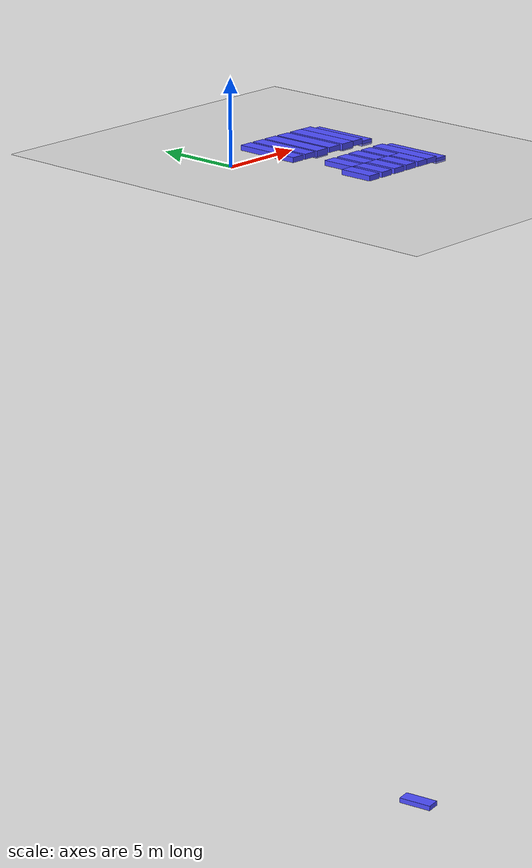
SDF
<sdf version="1.7">
 <world name="default">
  <model name="ground_plane">
   <static>1</static>
   <link name="link">
    <collision name="collision">
     <geometry><plane><normal>0 0 1</normal><size>100 100</size></plane></geometry>
     <surface><friction><ode><mu>100</mu><mu2>50</mu2></ode></friction></surface>
    </collision>
    <visual name="visual">
     <cast_shadows>0</cast_shadows>
     <geometry><plane><normal>0 0 1</normal><size>100 100</size></plane></geometry>
     <material>
      <script><uri>file://media/materials/scripts/gazebo.material</uri><name>Gazebo/Grey</name></script>
     </material>
    </visual>
   </link>
  </model>
  <model name="ban_400_80_30_clone_clone">
   <link name="link">
    <inertial>
     <mass>1</mass>
     <inertia>
      <ixx>0.166667</ixx>
      <ixy>0</ixy>
      <ixz>0</ixz>
      <iyy>0.166667</iyy>
      <iyz>0</iyz>
      <izz>0.166667</izz>
     </inertia>
    </inertial>
    <visual name="visual">
     <geometry><box><size>4 0.8 0.3</size></box></geometry>
     <material>
      <script><name>Gazebo/Grey</name><uri>file://media/materials/scripts/gazebo.material</uri></script>
      <shader type="pixel"><normal_map>__default__</normal_map></shader>
      <ambient>0.3 0.3 1 1</ambient>
      <diffuse>0.7 0.7 0.7 1</diffuse>
      <specular>0.01 0.01 0.01 1</specular>
      <emissive>0 0 0 1</emissive>
     </material>
    </visual>
    <collision name="collision">
     <geometry><box><size>4 0.8 0.3</size></box></geometry>
     <surface>
      <friction>
       <ode><mu>1</mu><mu2>1</mu2><fdir1>0 0 0</fdir1><slip1>0</slip1><slip2>0</slip2></ode>
       <torsional>
        <coefficient>1</coefficient>
        <patch_radius>0</patch_radius>
        <surface_radius>0</surface_radius>
        <use_patch_radius>1</use_patch_radius>
        <ode><slip>0</slip></ode>
       </torsional>
      </friction>
      <bounce><restitution_coefficient>0</restitution_coefficient><threshold>1e+06</threshold></bounce>
      <contact>
       <collide_without_contact>0</collide_without_contact>
       <collide_without_contact_bitmask>1</collide_without_contact_bitmask>
       <collide_bitmask>1</collide_bitmask>
       <ode>
        <soft_cfm>0</soft_cfm>
        <soft_erp>0.2</soft_erp>
        <kp>1e+13</kp>
        <kd>1</kd>
        <max_vel>0.01</max_vel>
        <min_depth>0</min_depth>
       </ode>
       <bullet>
        <split_impulse>1</split_impulse>
        <split_impulse_penetration_threshold>-0.01</split_impulse_penetration_threshold>
        <soft_cfm>0</soft_cfm>
        <soft_erp>0.2</soft_erp>
        <kp>1e+13</kp>
        <kd>1</kd>
       </bullet>
      </contact>
     </surface>
    </collision>
   </link>
   <static>1</static>
   <pose>3.39245 0.063056 0.15556 0 -0 1.55763</pose>
  </model>
  <model name="ban_400_80_30_clone_clone_clone">
   <link name="link">
    <inertial>
     <mass>1</mass>
     <inertia>
      <ixx>0.166667</ixx>
      <ixy>0</ixy>
      <ixz>0</ixz>
      <iyy>0.166667</iyy>
      <iyz>0</iyz>
      <izz>0.166667</izz>
     </inertia>
    </inertial>
    <visual name="visual">
     <geometry><box><size>4 0.8 0.3</size></box></geometry>
     <material>
      <script><name>Gazebo/Grey</name><uri>file://media/materials/scripts/gazebo.material</uri></script>
      <shader type="pixel"><normal_map>__default__</normal_map></shader>
      <ambient>0.3 0.3 1 1</ambient>
      <diffuse>0.7 0.7 0.7 1</diffuse>
      <specular>0.01 0.01 0.01 1</specular>
      <emissive>0 0 0 1</emissive>
     </material>
    </visual>
    <collision name="collision">
     <geometry><box><size>4 0.8 0.3</size></box></geometry>
     <surface>
      <friction>
       <ode><mu>1</mu><mu2>1</mu2><fdir1>0 0 0</fdir1><slip1>0</slip1><slip2>0</slip2></ode>
       <torsional>
        <coefficient>1</coefficient>
        <patch_radius>0</patch_radius>
        <surface_radius>0</surface_radius>
        <use_patch_radius>1</use_patch_radius>
        <ode><slip>0</slip></ode>
       </torsional>
      </friction>
      <bounce><restitution_coefficient>0</restitution_coefficient><threshold>1e+06</threshold></bounce>
      <contact>
       <collide_without_contact>0</collide_without_contact>
       <collide_without_contact_bitmask>1</collide_without_contact_bitmask>
       <collide_bitmask>1</collide_bitmask>
       <ode>
        <soft_cfm>0</soft_cfm>
        <soft_erp>0.2</soft_erp>
        <kp>1e+13</kp>
        <kd>1</kd>
        <max_vel>0.01</max_vel>
        <min_depth>0</min_depth>
       </ode>
       <bullet>
        <split_impulse>1</split_impulse>
        <split_impulse_penetration_threshold>-0.01</split_impulse_penetration_threshold>
        <soft_cfm>0</soft_cfm>
        <soft_erp>0.2</soft_erp>
        <kp>1e+13</kp>
        <kd>1</kd>
       </bullet>
      </contact>
     </surface>
    </collision>
   </link>
   <static>1</static>
   <pose>4.37496 0.053031 0.15556 0 -0 1.55763</pose>
  </model>
  <model name="ban_400_80_30_clone_clone_clone_clone">
   <link name="link">
    <inertial>
     <mass>1</mass>
     <inertia>
      <ixx>0.166667</ixx>
      <ixy>0</ixy>
      <ixz>0</ixz>
      <iyy>0.166667</iyy>
      <iyz>0</iyz>
      <izz>0.166667</izz>
     </inertia>
    </inertial>
    <visual name="visual">
     <geometry><box><size>4 0.884488 0.419826</size></box></geometry>
     <material>
      <script><name>Gazebo/Grey</name><uri>file://media/materials/scripts/gazebo.material</uri></script>
      <shader type="pixel"><normal_map>__default__</normal_map></shader>
      <ambient>0.3 0.3 1 1</ambient>
      <diffuse>0.7 0.7 0.7 1</diffuse>
      <specular>0.01 0.01 0.01 1</specular>
      <emissive>0 0 0 1</emissive>
     </material>
    </visual>
    <collision name="collision">
     <geometry><box><size>4 0.884488 0.419826</size></box></geometry>
     <surface>
      <friction>
       <ode><mu>1</mu><mu2>1</mu2><fdir1>0 0 0</fdir1><slip1>0</slip1><slip2>0</slip2></ode>
       <torsional>
        <coefficient>1</coefficient>
        <patch_radius>0</patch_radius>
        <surface_radius>0</surface_radius>
        <use_patch_radius>1</use_patch_radius>
        <ode><slip>0</slip></ode>
       </torsional>
      </friction>
      <bounce><restitution_coefficient>0</restitution_coefficient><threshold>1e+06</threshold></bounce>
      <contact>
       <collide_without_contact>0</collide_without_contact>
       <collide_without_contact_bitmask>1</collide_without_contact_bitmask>
       <collide_bitmask>1</collide_bitmask>
       <ode>
        <soft_cfm>0</soft_cfm>
        <soft_erp>0.2</soft_erp>
        <kp>1e+13</kp>
        <kd>1</kd>
        <max_vel>0.01</max_vel>
        <min_depth>0</min_depth>
       </ode>
       <bullet>
        <split_impulse>1</split_impulse>
        <split_impulse_penetration_threshold>-0.01</split_impulse_penetration_threshold>
        <soft_cfm>0</soft_cfm>
        <soft_erp>0.2</soft_erp>
        <kp>1e+13</kp>
        <kd>1</kd>
       </bullet>
      </contact>
     </surface>
    </collision>
   </link>
   <static>1</static>
   <pose>5.36986 0.045316 0.097515 0 -0 1.55763</pose>
  </model>
  <model name="ban_400_80_30_clone_clone_clone_clone_0">
   <link name="link">
    <inertial>
     <mass>1</mass>
     <inertia>
      <ixx>0.166667</ixx>
      <ixy>0</ixy>
      <ixz>0</ixz>
      <iyy>0.166667</iyy>
      <iyz>0</iyz>
      <izz>0.166667</izz>
     </inertia>
    </inertial>
    <visual name="visual">
     <geometry><box><size>4 0.893808 0.3</size></box></geometry>
     <material>
      <script><name>Gazebo/Grey</name><uri>file://media/materials/scripts/gazebo.material</uri></script>
      <shader type="pixel"><normal_map>__default__</normal_map></shader>
      <ambient>0.3 0.3 1 1</ambient>
      <diffuse>0.7 0.7 0.7 1</diffuse>
      <specular>0.01 0.01 0.01 1</specular>
      <emissive>0 0 0 1</emissive>
     </material>
    </visual>
    <collision name="collision">
     <geometry><box><size>4 0.893808 0.3</size></box></geometry>
     <surface>
      <friction>
       <ode><mu>1</mu><mu2>1</mu2><fdir1>0 0 0</fdir1><slip1>0</slip1><slip2>0</slip2></ode>
       <torsional>
        <coefficient>1</coefficient>
        <patch_radius>0</patch_radius>
        <surface_radius>0</surface_radius>
        <use_patch_radius>1</use_patch_radius>
        <ode><slip>0</slip></ode>
       </torsional>
      </friction>
      <bounce><restitution_coefficient>0</restitution_coefficient><threshold>1e+06</threshold></bounce>
      <contact>
       <collide_without_contact>0</collide_without_contact>
       <collide_without_contact_bitmask>1</collide_without_contact_bitmask>
       <collide_bitmask>1</collide_bitmask>
       <ode>
        <soft_cfm>0</soft_cfm>
        <soft_erp>0.2</soft_erp>
        <kp>1e+13</kp>
        <kd>1</kd>
        <max_vel>0.01</max_vel>
        <min_depth>0</min_depth>
       </ode>
       <bullet>
        <split_impulse>1</split_impulse>
        <split_impulse_penetration_threshold>-0.01</split_impulse_penetration_threshold>
        <soft_cfm>0</soft_cfm>
        <soft_erp>0.2</soft_erp>
        <kp>1e+13</kp>
        <kd>1</kd>
       </bullet>
      </contact>
     </surface>
    </collision>
   </link>
   <static>1</static>
   <pose>6.39845 0.026417 0.15556 0 -0 1.55763</pose>
  </model>
  <model name="ban_400_80_30_clone_clone_clone_clone_clone">
   <link name="link">
    <inertial>
     <mass>1</mass>
     <inertia>
      <ixx>0.166667</ixx>
      <ixy>0</ixy>
      <ixz>0</ixz>
      <iyy>0.166667</iyy>
      <iyz>0</iyz>
      <izz>0.166667</izz>
     </inertia>
    </inertial>
    <visual name="visual">
     <geometry><box><size>4 0.884489 0.419826</size></box></geometry>
     <material>
      <script><name>Gazebo/Grey</name><uri>file://media/materials/scripts/gazebo.material</uri></script>
      <shader type="pixel"><normal_map>__default__</normal_map></shader>
      <ambient>0.3 0.3 1 1</ambient>
      <diffuse>0.7 0.7 0.7 1</diffuse>
      <specular>0.01 0.01 0.01 1</specular>
      <emissive>0 0 0 1</emissive>
     </material>
    </visual>
    <collision name="collision">
     <geometry><box><size>4 0.884489 0.419826</size></box></geometry>
     <surface>
      <friction>
       <ode><mu>1</mu><mu2>1</mu2><fdir1>0 0 0</fdir1><slip1>0</slip1><slip2>0</slip2></ode>
       <torsional>
        <coefficient>1</coefficient>
        <patch_radius>0</patch_radius>
        <surface_radius>0</surface_radius>
        <use_patch_radius>1</use_patch_radius>
        <ode><slip>0</slip></ode>
       </torsional>
      </friction>
      <bounce><restitution_coefficient>0</restitution_coefficient><threshold>1e+06</threshold></bounce>
      <contact>
       <collide_without_contact>0</collide_without_contact>
       <collide_without_contact_bitmask>1</collide_without_contact_bitmask>
       <collide_bitmask>1</collide_bitmask>
       <ode>
        <soft_cfm>0</soft_cfm>
        <soft_erp>0.2</soft_erp>
        <kp>1e+13</kp>
        <kd>1</kd>
        <max_vel>0.01</max_vel>
        <min_depth>0</min_depth>
       </ode>
       <bullet>
        <split_impulse>1</split_impulse>
        <split_impulse_penetration_threshold>-0.01</split_impulse_penetration_threshold>
        <soft_cfm>0</soft_cfm>
        <soft_erp>0.2</soft_erp>
        <kp>1e+13</kp>
        <kd>1</kd>
       </bullet>
      </contact>
     </surface>
    </collision>
   </link>
   <static>1</static>
   <pose>7.49306 0.005349 0.097515 0 -0 1.55763</pose>
  </model>
  <model name="ban_400_80_30_clone_clone_0">
   <link name="link">
    <inertial>
     <mass>1</mass>
     <inertia>
      <ixx>0.166667</ixx>
      <ixy>0</ixy>
      <ixz>0</ixz>
      <iyy>0.166667</iyy>
      <iyz>0</iyz>
      <izz>0.166667</izz>
     </inertia>
    </inertial>
    <visual name="visual">
     <geometry><box><size>4 0.8 0.3</size></box></geometry>
     <material>
      <script><name>Gazebo/Grey</name><uri>file://media/materials/scripts/gazebo.material</uri></script>
      <shader type="pixel"><normal_map>__default__</normal_map></shader>
      <ambient>0.3 0.3 1 1</ambient>
      <diffuse>0.7 0.7 0.7 1</diffuse>
      <specular>0.01 0.01 0.01 1</specular>
      <emissive>0 0 0 1</emissive>
     </material>
    </visual>
    <collision name="collision">
     <geometry><box><size>4 0.8 0.3</size></box></geometry>
     <surface>
      <friction>
       <ode><mu>1</mu><mu2>1</mu2><fdir1>0 0 0</fdir1><slip1>0</slip1><slip2>0</slip2></ode>
       <torsional>
        <coefficient>1</coefficient>
        <patch_radius>0</patch_radius>
        <surface_radius>0</surface_radius>
        <use_patch_radius>1</use_patch_radius>
        <ode><slip>0</slip></ode>
       </torsional>
      </friction>
      <bounce><restitution_coefficient>0</restitution_coefficient><threshold>1e+06</threshold></bounce>
      <contact>
       <collide_without_contact>0</collide_without_contact>
       <collide_without_contact_bitmask>1</collide_without_contact_bitmask>
       <collide_bitmask>1</collide_bitmask>
       <ode>
        <soft_cfm>0</soft_cfm>
        <soft_erp>0.2</soft_erp>
        <kp>1e+13</kp>
        <kd>1</kd>
        <max_vel>0.01</max_vel>
        <min_depth>0</min_depth>
       </ode>
       <bullet>
        <split_impulse>1</split_impulse>
        <split_impulse_penetration_threshold>-0.01</split_impulse_penetration_threshold>
        <soft_cfm>0</soft_cfm>
        <soft_erp>0.2</soft_erp>
        <kp>1e+13</kp>
        <kd>1</kd>
       </bullet>
      </contact>
     </surface>
    </collision>
   </link>
   <static>1</static>
   <pose>8.33888 -0.001923 0.150704 0 -0 1.55763</pose>
  </model>
  <model name="ban_400_80_30_clone_0">
   <link name="link">
    <inertial>
     <mass>1</mass>
     <inertia>
      <ixx>0.166667</ixx>
      <ixy>0</ixy>
      <ixz>0</ixz>
      <iyy>0.166667</iyy>
      <iyz>0</iyz>
      <izz>0.166667</izz>
     </inertia>
    </inertial>
    <visual name="visual">
     <geometry><box><size>4 0.8 0.3</size></box></geometry>
     <material>
      <script><name>Gazebo/Grey</name><uri>file://media/materials/scripts/gazebo.material</uri></script>
      <shader type="pixel"><normal_map>__default__</normal_map></shader>
      <ambient>0.3 0.3 1 1</ambient>
      <diffuse>0.7 0.7 0.7 1</diffuse>
      <specular>0.01 0.01 0.01 1</specular>
      <emissive>0 0 0 1</emissive>
     </material>
    </visual>
    <collision name="collision">
     <geometry><box><size>4 0.8 0.3</size></box></geometry>
     <surface>
      <friction>
       <ode><mu>1</mu><mu2>1</mu2><fdir1>0 0 0</fdir1><slip1>0</slip1><slip2>0</slip2></ode>
       <torsional>
        <coefficient>1</coefficient>
        <patch_radius>0</patch_radius>
        <surface_radius>0</surface_radius>
        <use_patch_radius>1</use_patch_radius>
        <ode><slip>0</slip></ode>
       </torsional>
      </friction>
      <bounce><restitution_coefficient>0</restitution_coefficient><threshold>1e+06</threshold></bounce>
      <contact>
       <collide_without_contact>0</collide_without_contact>
       <collide_without_contact_bitmask>1</collide_without_contact_bitmask>
       <collide_bitmask>1</collide_bitmask>
       <ode>
        <soft_cfm>0</soft_cfm>
        <soft_erp>0.2</soft_erp>
        <kp>1e+13</kp>
        <kd>1</kd>
        <max_vel>0.01</max_vel>
        <min_depth>0</min_depth>
       </ode>
       <bullet>
        <split_impulse>1</split_impulse>
        <split_impulse_penetration_threshold>-0.01</split_impulse_penetration_threshold>
        <soft_cfm>0</soft_cfm>
        <soft_erp>0.2</soft_erp>
        <kp>1e+13</kp>
        <kd>1</kd>
       </bullet>
      </contact>
     </surface>
    </collision>
   </link>
   <static>1</static>
   <pose>9.1293 -0.014354 0 0 -0 1.55763</pose>
  </model>
  <model name="ban_200_80_30_clone">
   <link name="link">
    <inertial>
     <mass>1</mass>
     <inertia>
      <ixx>0.166667</ixx>
      <ixy>0</ixy>
      <ixz>0</ixz>
      <iyy>0.166667</iyy>
      <iyz>0</iyz>
      <izz>0.166667</izz>
     </inertia>
    </inertial>
    <visual name="visual">
     <geometry><box><size>2 0.8 0.3</size></box></geometry>
     <material>
      <script><name>Gazebo/Grey</name><uri>file://media/materials/scripts/gazebo.material</uri></script>
      <shader type="pixel"><normal_map>__default__</normal_map></shader>
      <ambient>0.3 0.3 1 1</ambient>
      <diffuse>0.7 0.7 0.7 1</diffuse>
      <specular>0.01 0.01 0.01 1</specular>
      <emissive>0 0 0 1</emissive>
     </material>
    </visual>
    <collision name="collision">
     <geometry><box><size>2 0.8 0.3</size></box></geometry>
     <surface>
      <friction>
       <ode><mu>1</mu><mu2>1</mu2><fdir1>0 0 0</fdir1><slip1>0</slip1><slip2>0</slip2></ode>
       <torsional>
        <coefficient>1</coefficient>
        <patch_radius>0</patch_radius>
        <surface_radius>0</surface_radius>
        <use_patch_radius>1</use_patch_radius>
        <ode><slip>0</slip></ode>
       </torsional>
      </friction>
      <bounce><restitution_coefficient>0</restitution_coefficient><threshold>1e+06</threshold></bounce>
      <contact>
       <collide_without_contact>0</collide_without_contact>
       <collide_without_contact_bitmask>1</collide_without_contact_bitmask>
       <collide_bitmask>1</collide_bitmask>
       <ode>
        <soft_cfm>0</soft_cfm>
        <soft_erp>0.2</soft_erp>
        <kp>1e+13</kp>
        <kd>1</kd>
        <max_vel>0.01</max_vel>
        <min_depth>0</min_depth>
       </ode>
       <bullet>
        <split_impulse>1</split_impulse>
        <split_impulse_penetration_threshold>-0.01</split_impulse_penetration_threshold>
        <soft_cfm>0</soft_cfm>
        <soft_erp>0.2</soft_erp>
        <kp>1e+13</kp>
        <kd>1</kd>
       </bullet>
      </contact>
     </surface>
    </collision>
   </link>
   <static>1</static>
   <pose>3.37749 -6.50817 0.12138 0 0 -1.57453</pose>
  </model>
  <model name="ban_200_80_30_clone_0">
   <link name="link">
    <inertial>
     <mass>1</mass>
     <inertia>
      <ixx>0.166667</ixx>
      <ixy>0</ixy>
      <ixz>0</ixz>
      <iyy>0.166667</iyy>
      <iyz>0</iyz>
      <izz>0.166667</izz>
     </inertia>
    </inertial>
    <visual name="visual">
     <geometry><box><size>2 0.8 0.3</size></box></geometry>
     <material>
      <script><name>Gazebo/Grey</name><uri>file://media/materials/scripts/gazebo.material</uri></script>
      <shader type="pixel"><normal_map>__default__</normal_map></shader>
      <ambient>0.3 0.3 1 1</ambient>
      <diffuse>0.7 0.7 0.7 1</diffuse>
      <specular>0.01 0.01 0.01 1</specular>
      <emissive>0 0 0 1</emissive>
     </material>
    </visual>
    <collision name="collision">
     <geometry><box><size>2 0.8 0.3</size></box></geometry>
     <surface>
      <friction>
       <ode><mu>1</mu><mu2>1</mu2><fdir1>0 0 0</fdir1><slip1>0</slip1><slip2>0</slip2></ode>
       <torsional>
        <coefficient>1</coefficient>
        <patch_radius>0</patch_radius>
        <surface_radius>0</surface_radius>
        <use_patch_radius>1</use_patch_radius>
        <ode><slip>0</slip></ode>
       </torsional>
      </friction>
      <bounce><restitution_coefficient>0</restitution_coefficient><threshold>1e+06</threshold></bounce>
      <contact>
       <collide_without_contact>0</collide_without_contact>
       <collide_without_contact_bitmask>1</collide_without_contact_bitmask>
       <collide_bitmask>1</collide_bitmask>
       <ode>
        <soft_cfm>0</soft_cfm>
        <soft_erp>0.2</soft_erp>
        <kp>1e+13</kp>
        <kd>1</kd>
        <max_vel>0.01</max_vel>
        <min_depth>0</min_depth>
       </ode>
       <bullet>
        <split_impulse>1</split_impulse>
        <split_impulse_penetration_threshold>-0.01</split_impulse_penetration_threshold>
        <soft_cfm>0</soft_cfm>
        <soft_erp>0.2</soft_erp>
        <kp>1e+13</kp>
        <kd>1</kd>
       </bullet>
      </contact>
     </surface>
    </collision>
   </link>
   <static>1</static>
   <pose>4.1987 -4.53193 0.12138 0 0 -1.57453</pose>
  </model>
  <model name="ban_200_80_30_clone_1">
   <link name="link">
    <inertial>
     <mass>1</mass>
     <inertia>
      <ixx>0.166667</ixx>
      <ixy>0</ixy>
      <ixz>0</ixz>
      <iyy>0.166667</iyy>
      <iyz>0</iyz>
      <izz>0.166667</izz>
     </inertia>
    </inertial>
    <visual name="visual">
     <geometry><box><size>2 0.8 0.3</size></box></geometry>
     <material>
      <script><name>Gazebo/Grey</name><uri>file://media/materials/scripts/gazebo.material</uri></script>
      <shader type="pixel"><normal_map>__default__</normal_map></shader>
      <ambient>0.3 0.3 1 1</ambient>
      <diffuse>0.7 0.7 0.7 1</diffuse>
      <specular>0.01 0.01 0.01 1</specular>
      <emissive>0 0 0 1</emissive>
     </material>
    </visual>
    <collision name="collision">
     <geometry><box><size>2 0.8 0.3</size></box></geometry>
     <surface>
      <friction>
       <ode><mu>1</mu><mu2>1</mu2><fdir1>0 0 0</fdir1><slip1>0</slip1><slip2>0</slip2></ode>
       <torsional>
        <coefficient>1</coefficient>
        <patch_radius>0</patch_radius>
        <surface_radius>0</surface_radius>
        <use_patch_radius>1</use_patch_radius>
        <ode><slip>0</slip></ode>
       </torsional>
      </friction>
      <bounce><restitution_coefficient>0</restitution_coefficient><threshold>1e+06</threshold></bounce>
      <contact>
       <collide_without_contact>0</collide_without_contact>
       <collide_without_contact_bitmask>1</collide_without_contact_bitmask>
       <collide_bitmask>1</collide_bitmask>
       <ode>
        <soft_cfm>0</soft_cfm>
        <soft_erp>0.2</soft_erp>
        <kp>1e+13</kp>
        <kd>1</kd>
        <max_vel>0.01</max_vel>
        <min_depth>0</min_depth>
       </ode>
       <bullet>
        <split_impulse>1</split_impulse>
        <split_impulse_penetration_threshold>-0.01</split_impulse_penetration_threshold>
        <soft_cfm>0</soft_cfm>
        <soft_erp>0.2</soft_erp>
        <kp>1e+13</kp>
        <kd>1</kd>
       </bullet>
      </contact>
     </surface>
    </collision>
   </link>
   <static>1</static>
   <pose>4.40676 -6.517 0.12138 0 0 -1.57453</pose>
  </model>
  <model name="ban_200_80_30_clone_2">
   <link name="link">
    <inertial>
     <mass>1</mass>
     <inertia>
      <ixx>0.166667</ixx>
      <ixy>0</ixy>
      <ixz>0</ixz>
      <iyy>0.166667</iyy>
      <iyz>0</iyz>
      <izz>0.166667</izz>
     </inertia>
    </inertial>
    <visual name="visual">
     <geometry><box><size>2 0.8 0.3</size></box></geometry>
     <material>
      <script><name>Gazebo/Grey</name><uri>file://media/materials/scripts/gazebo.material</uri></script>
      <shader type="pixel"><normal_map>__default__</normal_map></shader>
      <ambient>0.3 0.3 1 1</ambient>
      <diffuse>0.7 0.7 0.7 1</diffuse>
      <specular>0.01 0.01 0.01 1</specular>
      <emissive>0 0 0 1</emissive>
     </material>
    </visual>
    <collision name="collision">
     <geometry><box><size>2 0.8 0.3</size></box></geometry>
     <surface>
      <friction>
       <ode><mu>1</mu><mu2>1</mu2><fdir1>0 0 0</fdir1><slip1>0</slip1><slip2>0</slip2></ode>
       <torsional>
        <coefficient>1</coefficient>
        <patch_radius>0</patch_radius>
        <surface_radius>0</surface_radius>
        <use_patch_radius>1</use_patch_radius>
        <ode><slip>0</slip></ode>
       </torsional>
      </friction>
      <bounce><restitution_coefficient>0</restitution_coefficient><threshold>1e+06</threshold></bounce>
      <contact>
       <collide_without_contact>0</collide_without_contact>
       <collide_without_contact_bitmask>1</collide_without_contact_bitmask>
       <collide_bitmask>1</collide_bitmask>
       <ode>
        <soft_cfm>0</soft_cfm>
        <soft_erp>0.2</soft_erp>
        <kp>1e+13</kp>
        <kd>1</kd>
        <max_vel>0.01</max_vel>
        <min_depth>0</min_depth>
       </ode>
       <bullet>
        <split_impulse>1</split_impulse>
        <split_impulse_penetration_threshold>-0.01</split_impulse_penetration_threshold>
        <soft_cfm>0</soft_cfm>
        <soft_erp>0.2</soft_erp>
        <kp>1e+13</kp>
        <kd>1</kd>
       </bullet>
      </contact>
     </surface>
    </collision>
   </link>
   <static>1</static>
   <pose>5.21905 -4.53145 0.12138 0 0 -1.57453</pose>
  </model>
  <model name="ban_200_80_30_clone_3">
   <link name="link">
    <inertial>
     <mass>1</mass>
     <inertia>
      <ixx>0.166667</ixx>
      <ixy>0</ixy>
      <ixz>0</ixz>
      <iyy>0.166667</iyy>
      <iyz>0</iyz>
      <izz>0.166667</izz>
     </inertia>
    </inertial>
    <visual name="visual">
     <geometry><box><size>2 0.8 0.3</size></box></geometry>
     <material>
      <script><name>Gazebo/Grey</name><uri>file://media/materials/scripts/gazebo.material</uri></script>
      <shader type="pixel"><normal_map>__default__</normal_map></shader>
      <ambient>0.3 0.3 1 1</ambient>
      <diffuse>0.7 0.7 0.7 1</diffuse>
      <specular>0.01 0.01 0.01 1</specular>
      <emissive>0 0 0 1</emissive>
     </material>
    </visual>
    <collision name="collision">
     <geometry><box><size>2 0.8 0.3</size></box></geometry>
     <surface>
      <friction>
       <ode><mu>1</mu><mu2>1</mu2><fdir1>0 0 0</fdir1><slip1>0</slip1><slip2>0</slip2></ode>
       <torsional>
        <coefficient>1</coefficient>
        <patch_radius>0</patch_radius>
        <surface_radius>0</surface_radius>
        <use_patch_radius>1</use_patch_radius>
        <ode><slip>0</slip></ode>
       </torsional>
      </friction>
      <bounce><restitution_coefficient>0</restitution_coefficient><threshold>1e+06</threshold></bounce>
      <contact>
       <collide_without_contact>0</collide_without_contact>
       <collide_without_contact_bitmask>1</collide_without_contact_bitmask>
       <collide_bitmask>1</collide_bitmask>
       <ode>
        <soft_cfm>0</soft_cfm>
        <soft_erp>0.2</soft_erp>
        <kp>1e+13</kp>
        <kd>1</kd>
        <max_vel>0.01</max_vel>
        <min_depth>0</min_depth>
       </ode>
       <bullet>
        <split_impulse>1</split_impulse>
        <split_impulse_penetration_threshold>-0.01</split_impulse_penetration_threshold>
        <soft_cfm>0</soft_cfm>
        <soft_erp>0.2</soft_erp>
        <kp>1e+13</kp>
        <kd>1</kd>
       </bullet>
      </contact>
     </surface>
    </collision>
   </link>
   <static>1</static>
   <pose>5.43779 -6.51513 0.12138 0 0 -1.57453</pose>
  </model>
  <model name="ban_200_80_30_clone_4">
   <link name="link">
    <inertial>
     <mass>1</mass>
     <inertia>
      <ixx>0.166667</ixx>
      <ixy>0</ixy>
      <ixz>0</ixz>
      <iyy>0.166667</iyy>
      <iyz>0</iyz>
      <izz>0.166667</izz>
     </inertia>
    </inertial>
    <visual name="visual">
     <geometry><box><size>2 0.8 0.3</size></box></geometry>
     <material>
      <script><name>Gazebo/Grey</name><uri>file://media/materials/scripts/gazebo.material</uri></script>
      <shader type="pixel"><normal_map>__default__</normal_map></shader>
      <ambient>0.3 0.3 1 1</ambient>
      <diffuse>0.7 0.7 0.7 1</diffuse>
      <specular>0.01 0.01 0.01 1</specular>
      <emissive>0 0 0 1</emissive>
     </material>
    </visual>
    <collision name="collision">
     <geometry><box><size>2 0.8 0.3</size></box></geometry>
     <surface>
      <friction>
       <ode><mu>1</mu><mu2>1</mu2><fdir1>0 0 0</fdir1><slip1>0</slip1><slip2>0</slip2></ode>
       <torsional>
        <coefficient>1</coefficient>
        <patch_radius>0</patch_radius>
        <surface_radius>0</surface_radius>
        <use_patch_radius>1</use_patch_radius>
        <ode><slip>0</slip></ode>
       </torsional>
      </friction>
      <bounce><restitution_coefficient>0</restitution_coefficient><threshold>1e+06</threshold></bounce>
      <contact>
       <collide_without_contact>0</collide_without_contact>
       <collide_without_contact_bitmask>1</collide_without_contact_bitmask>
       <collide_bitmask>1</collide_bitmask>
       <ode>
        <soft_cfm>0</soft_cfm>
        <soft_erp>0.2</soft_erp>
        <kp>1e+13</kp>
        <kd>1</kd>
        <max_vel>0.01</max_vel>
        <min_depth>0</min_depth>
       </ode>
       <bullet>
        <split_impulse>1</split_impulse>
        <split_impulse_penetration_threshold>-0.01</split_impulse_penetration_threshold>
        <soft_cfm>0</soft_cfm>
        <soft_erp>0.2</soft_erp>
        <kp>1e+13</kp>
        <kd>1</kd>
       </bullet>
      </contact>
     </surface>
    </collision>
   </link>
   <static>1</static>
   <pose>6.23074 -4.5101 0.12138 0 0 -1.57453</pose>
  </model>
  <model name="ban_200_80_30_clone_5">
   <link name="link">
    <inertial>
     <mass>1</mass>
     <inertia>
      <ixx>0.166667</ixx>
      <ixy>0</ixy>
      <ixz>0</ixz>
      <iyy>0.166667</iyy>
      <iyz>0</iyz>
      <izz>0.166667</izz>
     </inertia>
    </inertial>
    <visual name="visual">
     <geometry><box><size>2 0.8 0.3</size></box></geometry>
     <material>
      <script><name>Gazebo/Grey</name><uri>file://media/materials/scripts/gazebo.material</uri></script>
      <shader type="pixel"><normal_map>__default__</normal_map></shader>
      <ambient>0.3 0.3 1 1</ambient>
      <diffuse>0.7 0.7 0.7 1</diffuse>
      <specular>0.01 0.01 0.01 1</specular>
      <emissive>0 0 0 1</emissive>
     </material>
    </visual>
    <collision name="collision">
     <geometry><box><size>2 0.8 0.3</size></box></geometry>
     <surface>
      <friction>
       <ode><mu>1</mu><mu2>1</mu2><fdir1>0 0 0</fdir1><slip1>0</slip1><slip2>0</slip2></ode>
       <torsional>
        <coefficient>1</coefficient>
        <patch_radius>0</patch_radius>
        <surface_radius>0</surface_radius>
        <use_patch_radius>1</use_patch_radius>
        <ode><slip>0</slip></ode>
       </torsional>
      </friction>
      <bounce><restitution_coefficient>0</restitution_coefficient><threshold>1e+06</threshold></bounce>
      <contact>
       <collide_without_contact>0</collide_without_contact>
       <collide_without_contact_bitmask>1</collide_without_contact_bitmask>
       <collide_bitmask>1</collide_bitmask>
       <ode>
        <soft_cfm>0</soft_cfm>
        <soft_erp>0.2</soft_erp>
        <kp>1e+13</kp>
        <kd>1</kd>
        <max_vel>0.01</max_vel>
        <min_depth>0</min_depth>
       </ode>
       <bullet>
        <split_impulse>1</split_impulse>
        <split_impulse_penetration_threshold>-0.01</split_impulse_penetration_threshold>
        <soft_cfm>0</soft_cfm>
        <soft_erp>0.2</soft_erp>
        <kp>1e+13</kp>
        <kd>1</kd>
       </bullet>
      </contact>
     </surface>
    </collision>
   </link>
   <static>1</static>
   <pose>6.43473 -6.50923 0.12138 0 0 -1.57453</pose>
  </model>
  <model name="ban_200_80_30_clone_6">
   <link name="link">
    <inertial>
     <mass>1</mass>
     <inertia>
      <ixx>0.166667</ixx>
      <ixy>0</ixy>
      <ixz>0</ixz>
      <iyy>0.166667</iyy>
      <iyz>0</iyz>
      <izz>0.166667</izz>
     </inertia>
    </inertial>
    <visual name="visual">
     <geometry><box><size>2 0.8 0.3</size></box></geometry>
     <material>
      <script><name>Gazebo/Grey</name><uri>file://media/materials/scripts/gazebo.material</uri></script>
      <shader type="pixel"><normal_map>__default__</normal_map></shader>
      <ambient>0.3 0.3 1 1</ambient>
      <diffuse>0.7 0.7 0.7 1</diffuse>
      <specular>0.01 0.01 0.01 1</specular>
      <emissive>0 0 0 1</emissive>
     </material>
    </visual>
    <collision name="collision">
     <geometry><box><size>2 0.8 0.3</size></box></geometry>
     <surface>
      <friction>
       <ode><mu>1</mu><mu2>1</mu2><fdir1>0 0 0</fdir1><slip1>0</slip1><slip2>0</slip2></ode>
       <torsional>
        <coefficient>1</coefficient>
        <patch_radius>0</patch_radius>
        <surface_radius>0</surface_radius>
        <use_patch_radius>1</use_patch_radius>
        <ode><slip>0</slip></ode>
       </torsional>
      </friction>
      <bounce><restitution_coefficient>0</restitution_coefficient><threshold>1e+06</threshold></bounce>
      <contact>
       <collide_without_contact>0</collide_without_contact>
       <collide_without_contact_bitmask>1</collide_without_contact_bitmask>
       <collide_bitmask>1</collide_bitmask>
       <ode>
        <soft_cfm>0</soft_cfm>
        <soft_erp>0.2</soft_erp>
        <kp>1e+13</kp>
        <kd>1</kd>
        <max_vel>0.01</max_vel>
        <min_depth>0</min_depth>
       </ode>
       <bullet>
        <split_impulse>1</split_impulse>
        <split_impulse_penetration_threshold>-0.01</split_impulse_penetration_threshold>
        <soft_cfm>0</soft_cfm>
        <soft_erp>0.2</soft_erp>
        <kp>1e+13</kp>
        <kd>1</kd>
       </bullet>
      </contact>
     </surface>
    </collision>
   </link>
   <static>1</static>
   <pose>7.22725 -4.53178 0.12138 0 0 -1.57453</pose>
  </model>
  <model name="ban_200_80_30_clone_7">
   <link name="link">
    <inertial>
     <mass>1</mass>
     <inertia>
      <ixx>0.166667</ixx>
      <ixy>0</ixy>
      <ixz>0</ixz>
      <iyy>0.166667</iyy>
      <iyz>0</iyz>
      <izz>0.166667</izz>
     </inertia>
    </inertial>
    <visual name="visual">
     <geometry><box><size>2 0.8 0.3</size></box></geometry>
     <material>
      <script><name>Gazebo/Grey</name><uri>file://media/materials/scripts/gazebo.material</uri></script>
      <shader type="pixel"><normal_map>__default__</normal_map></shader>
      <ambient>0.3 0.3 1 1</ambient>
      <diffuse>0.7 0.7 0.7 1</diffuse>
      <specular>0.01 0.01 0.01 1</specular>
      <emissive>0 0 0 1</emissive>
     </material>
    </visual>
    <collision name="collision">
     <geometry><box><size>2 0.8 0.3</size></box></geometry>
     <surface>
      <friction>
       <ode><mu>1</mu><mu2>1</mu2><fdir1>0 0 0</fdir1><slip1>0</slip1><slip2>0</slip2></ode>
       <torsional>
        <coefficient>1</coefficient>
        <patch_radius>0</patch_radius>
        <surface_radius>0</surface_radius>
        <use_patch_radius>1</use_patch_radius>
        <ode><slip>0</slip></ode>
       </torsional>
      </friction>
      <bounce><restitution_coefficient>0</restitution_coefficient><threshold>1e+06</threshold></bounce>
      <contact>
       <collide_without_contact>0</collide_without_contact>
       <collide_without_contact_bitmask>1</collide_without_contact_bitmask>
       <collide_bitmask>1</collide_bitmask>
       <ode>
        <soft_cfm>0</soft_cfm>
        <soft_erp>0.2</soft_erp>
        <kp>1e+13</kp>
        <kd>1</kd>
        <max_vel>0.01</max_vel>
        <min_depth>0</min_depth>
       </ode>
       <bullet>
        <split_impulse>1</split_impulse>
        <split_impulse_penetration_threshold>-0.01</split_impulse_penetration_threshold>
        <soft_cfm>0</soft_cfm>
        <soft_erp>0.2</soft_erp>
        <kp>1e+13</kp>
        <kd>1</kd>
       </bullet>
      </contact>
     </surface>
    </collision>
   </link>
   <static>1</static>
   <pose>7.42507 -6.51133 0.12138 0 0 -1.57453</pose>
  </model>
  <model name="ban_400_80_30_clone_2_clone">
   <link name="link">
    <inertial>
     <mass>1</mass>
     <inertia>
      <ixx>0.166667</ixx>
      <ixy>0</ixy>
      <ixz>0</ixz>
      <iyy>0.166667</iyy>
      <iyz>0</iyz>
      <izz>0.166667</izz>
     </inertia>
    </inertial>
    <visual name="visual">
     <geometry><box><size>4 0.8 0.3</size></box></geometry>
     <material>
      <script><name>Gazebo/Grey</name><uri>file://media/materials/scripts/gazebo.material</uri></script>
      <shader type="pixel"><normal_map>__default__</normal_map></shader>
      <ambient>0.3 0.3 1 1</ambient>
      <diffuse>0.7 0.7 0.7 1</diffuse>
      <specular>0.01 0.01 0.01 1</specular>
      <emissive>0 0 0 1</emissive>
     </material>
    </visual>
    <collision name="collision">
     <geometry><box><size>4 0.8 0.3</size></box></geometry>
     <surface>
      <friction>
       <ode><mu>1</mu><mu2>1</mu2><fdir1>0 0 0</fdir1><slip1>0</slip1><slip2>0</slip2></ode>
       <torsional>
        <coefficient>1</coefficient>
        <patch_radius>0</patch_radius>
        <surface_radius>0</surface_radius>
        <use_patch_radius>1</use_patch_radius>
        <ode><slip>0</slip></ode>
       </torsional>
      </friction>
      <bounce><restitution_coefficient>0</restitution_coefficient><threshold>1e+06</threshold></bounce>
      <contact>
       <collide_without_contact>0</collide_without_contact>
       <collide_without_contact_bitmask>1</collide_without_contact_bitmask>
       <collide_bitmask>1</collide_bitmask>
       <ode>
        <soft_cfm>0</soft_cfm>
        <soft_erp>0.2</soft_erp>
        <kp>1e+13</kp>
        <kd>1</kd>
        <max_vel>0.01</max_vel>
        <min_depth>0</min_depth>
       </ode>
       <bullet>
        <split_impulse>1</split_impulse>
        <split_impulse_penetration_threshold>-0.01</split_impulse_penetration_threshold>
        <soft_cfm>0</soft_cfm>
        <soft_erp>0.2</soft_erp>
        <kp>1e+13</kp>
        <kd>1</kd>
       </bullet>
      </contact>
     </surface>
    </collision>
   </link>
   <static>1</static>
   <pose>8.22482 -5.5299 0.12761 0 -0 1.55763</pose>
  </model>
  <model name="ban_400_80_30_clone_1_clone">
   <link name="link">
    <inertial>
     <mass>1</mass>
     <inertia>
      <ixx>0.166667</ixx>
      <ixy>0</ixy>
      <ixz>0</ixz>
      <iyy>0.166667</iyy>
      <iyz>0</iyz>
      <izz>0.166667</izz>
     </inertia>
    </inertial>
    <visual name="visual">
     <geometry><box><size>4 0.8 0.3</size></box></geometry>
     <material>
      <script><name>Gazebo/Grey</name><uri>file://media/materials/scripts/gazebo.material</uri></script>
      <shader type="pixel"><normal_map>__default__</normal_map></shader>
      <ambient>0.3 0.3 1 1</ambient>
      <diffuse>0.7 0.7 0.7 1</diffuse>
      <specular>0.01 0.01 0.01 1</specular>
      <emissive>0 0 0 1</emissive>
     </material>
    </visual>
    <collision name="collision">
     <geometry><box><size>4 0.8 0.3</size></box></geometry>
     <surface>
      <friction>
       <ode><mu>1</mu><mu2>1</mu2><fdir1>0 0 0</fdir1><slip1>0</slip1><slip2>0</slip2></ode>
       <torsional>
        <coefficient>1</coefficient>
        <patch_radius>0</patch_radius>
        <surface_radius>0</surface_radius>
        <use_patch_radius>1</use_patch_radius>
        <ode><slip>0</slip></ode>
       </torsional>
      </friction>
      <bounce><restitution_coefficient>0</restitution_coefficient><threshold>1e+06</threshold></bounce>
      <contact>
       <collide_without_contact>0</collide_without_contact>
       <collide_without_contact_bitmask>1</collide_without_contact_bitmask>
       <collide_bitmask>1</collide_bitmask>
       <ode>
        <soft_cfm>0</soft_cfm>
        <soft_erp>0.2</soft_erp>
        <kp>1e+13</kp>
        <kd>1</kd>
        <max_vel>0.01</max_vel>
        <min_depth>0</min_depth>
       </ode>
       <bullet>
        <split_impulse>1</split_impulse>
        <split_impulse_penetration_threshold>-0.01</split_impulse_penetration_threshold>
        <soft_cfm>0</soft_cfm>
        <soft_erp>0.2</soft_erp>
        <kp>1e+13</kp>
        <kd>1</kd>
       </bullet>
      </contact>
     </surface>
    </collision>
   </link>
   <static>1</static>
   <pose>9.00274 -5.54299 0 0 -0 1.55763</pose>
  </model>
  <model name="ban_200_80_30_clone_clone">
   <link name="link">
    <inertial>
     <mass>1</mass>
     <inertia>
      <ixx>0.166667</ixx>
      <ixy>0</ixy>
      <ixz>0</ixz>
      <iyy>0.166667</iyy>
      <iyz>0</iyz>
      <izz>0.166667</izz>
     </inertia>
    </inertial>
    <visual name="visual">
     <geometry><box><size>2 0.8 0.3</size></box></geometry>
     <material>
      <script><name>Gazebo/Grey</name><uri>file://media/materials/scripts/gazebo.material</uri></script>
      <shader type="pixel"><normal_map>__default__</normal_map></shader>
      <ambient>0.3 0.3 1 1</ambient>
      <diffuse>0.7 0.7 0.7 1</diffuse>
      <specular>0.01 0.01 0.01 1</specular>
      <emissive>0 0 0 1</emissive>
     </material>
    </visual>
    <collision name="collision">
     <geometry><box><size>2 0.8 0.3</size></box></geometry>
     <surface>
      <friction>
       <ode><mu>1</mu><mu2>1</mu2><fdir1>0 0 0</fdir1><slip1>0</slip1><slip2>0</slip2></ode>
       <torsional>
        <coefficient>1</coefficient>
        <patch_radius>0</patch_radius>
        <surface_radius>0</surface_radius>
        <use_patch_radius>1</use_patch_radius>
        <ode><slip>0</slip></ode>
       </torsional>
      </friction>
      <bounce><restitution_coefficient>0</restitution_coefficient><threshold>1e+06</threshold></bounce>
      <contact>
       <collide_without_contact>0</collide_without_contact>
       <collide_without_contact_bitmask>1</collide_without_contact_bitmask>
       <collide_bitmask>1</collide_bitmask>
       <ode>
        <soft_cfm>0</soft_cfm>
        <soft_erp>0.2</soft_erp>
        <kp>1e+13</kp>
        <kd>1</kd>
        <max_vel>0.01</max_vel>
        <min_depth>0</min_depth>
       </ode>
       <bullet>
        <split_impulse>1</split_impulse>
        <split_impulse_penetration_threshold>-0.01</split_impulse_penetration_threshold>
        <soft_cfm>0</soft_cfm>
        <soft_erp>0.2</soft_erp>
        <kp>1e+13</kp>
        <kd>1</kd>
       </bullet>
      </contact>
     </surface>
    </collision>
   </link>
   <static>1</static>
   <pose>3.32802 -11.2985 -36.3188 0 0 -1.39548</pose>
  </model>
 </world>
</sdf>
